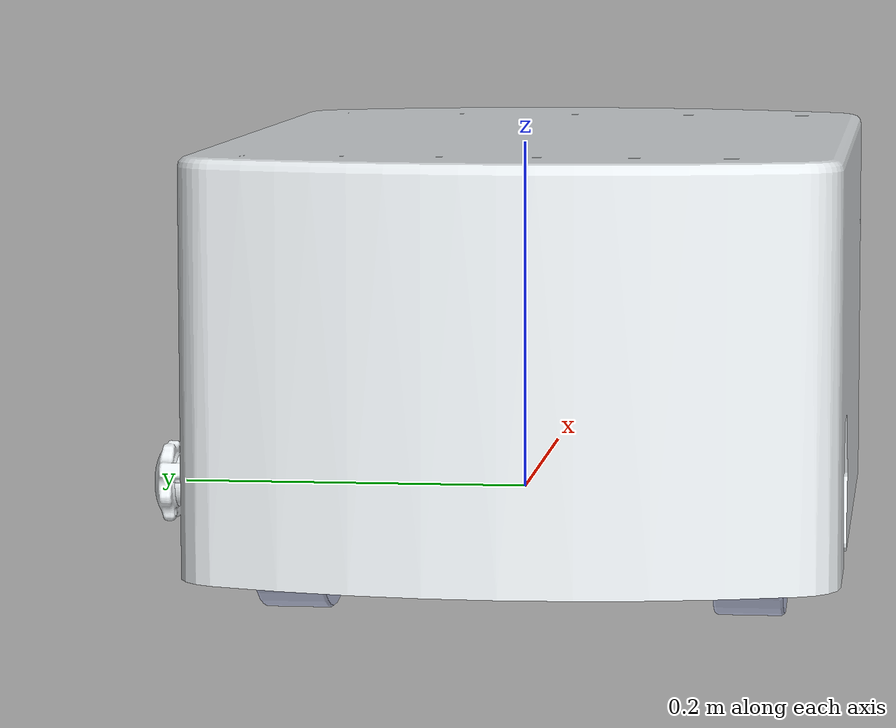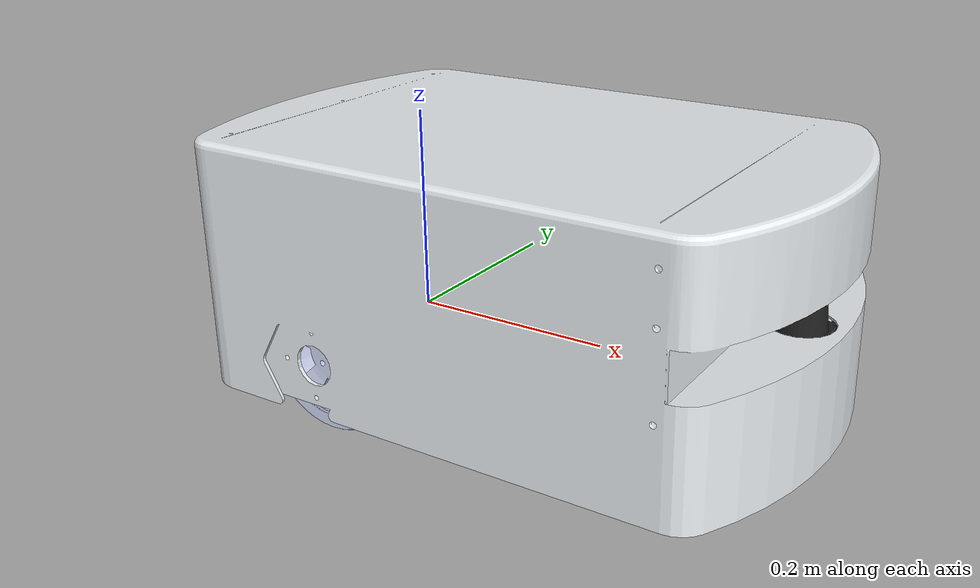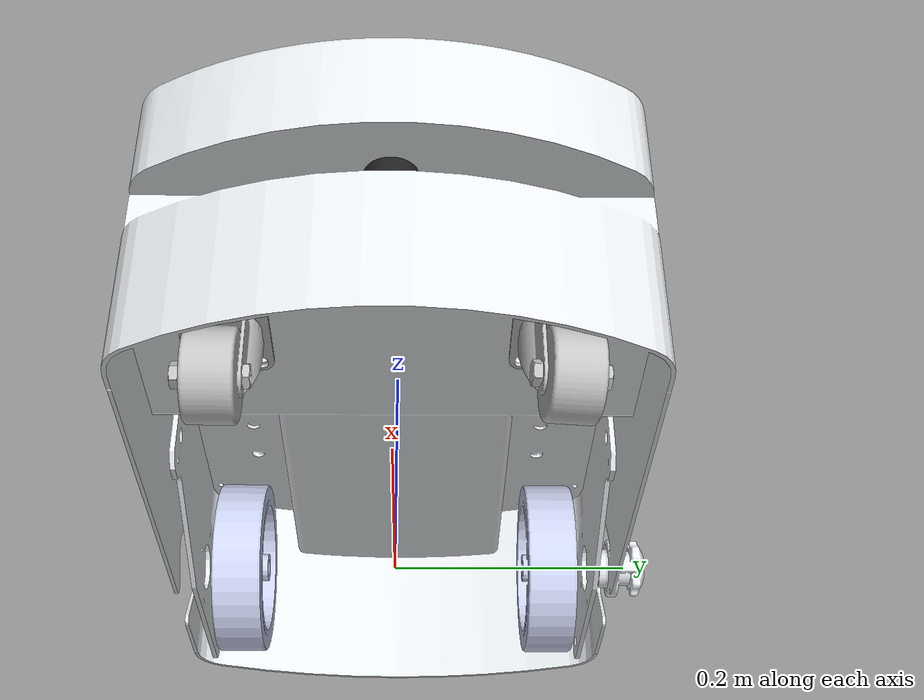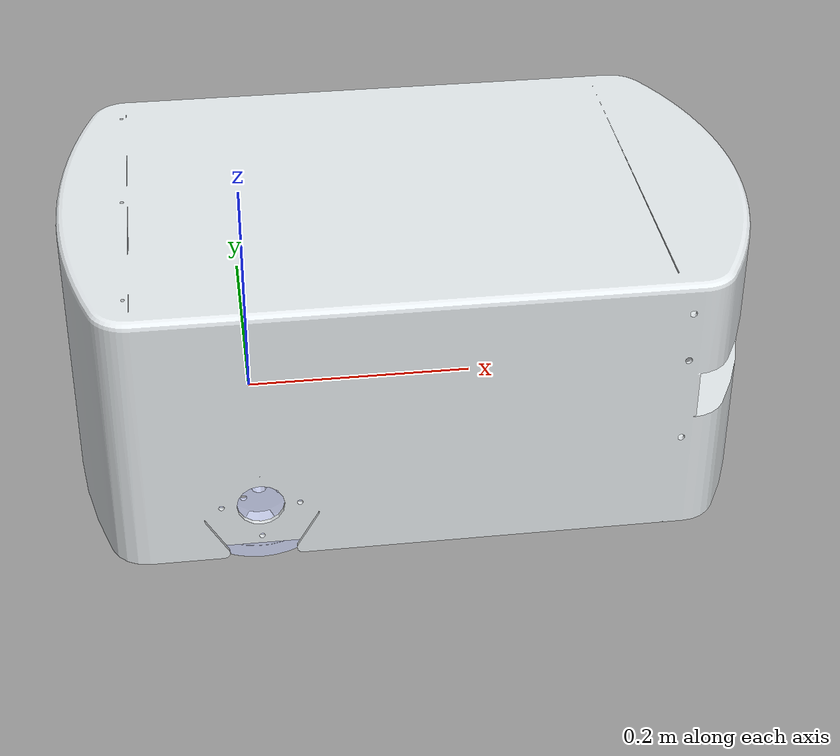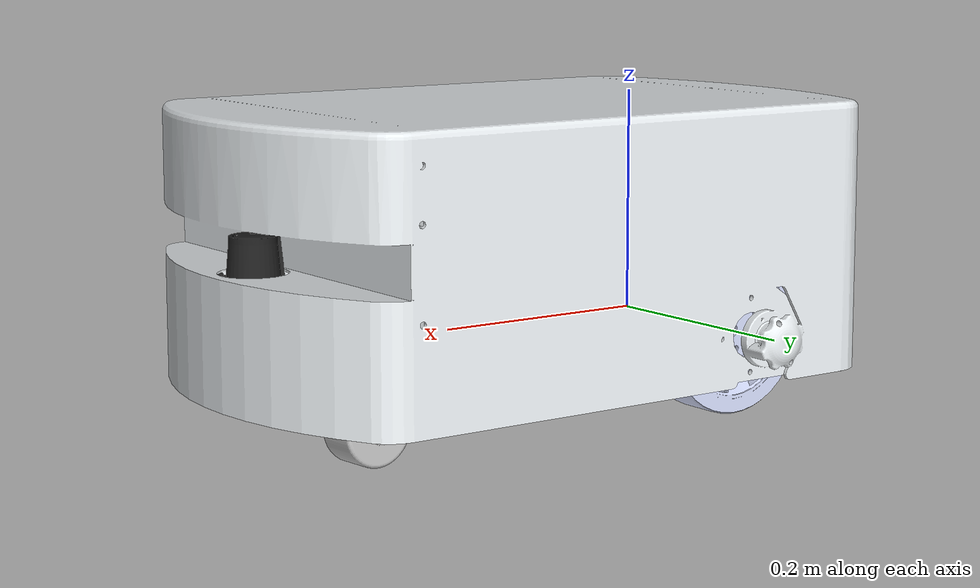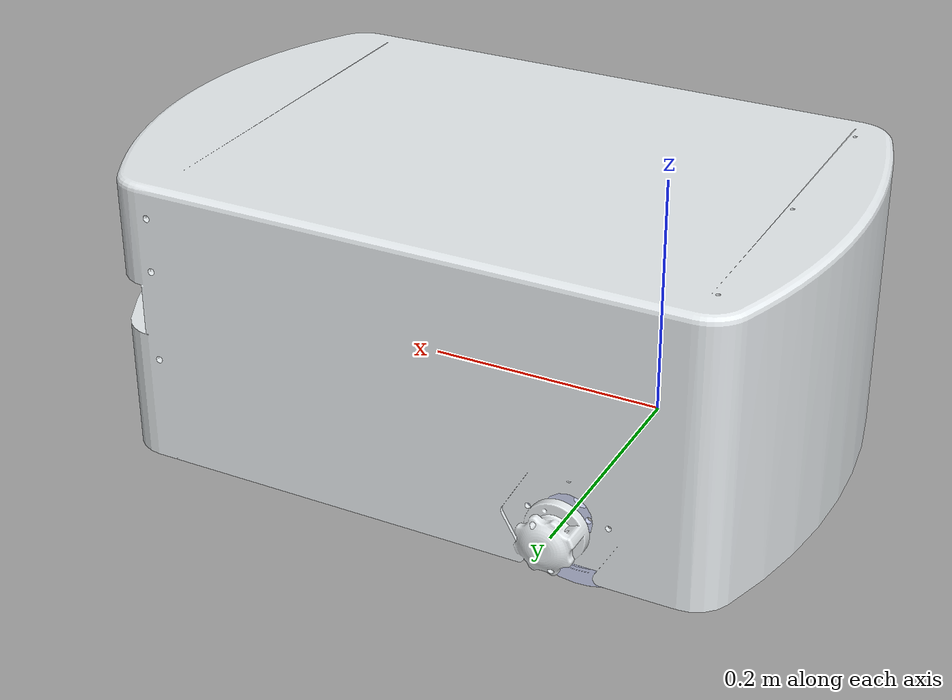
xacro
<?xml version="1.0" ?>
<robot name="turtlebot3_myAGV" xmlns:xacro="http://ros.org/wiki/xacro">
  <xacro:include filename="$(find turtlebot3_description)/urdf/common_properties.xacro"/>
  <xacro:include filename="$(find turtlebot3_description)/urdf/turtlebot3_myAGV.gazebo.xacro"/>

  <link name="base_footprint"/>

  <joint name="base_joint" type="fixed">
    <parent link="base_footprint"/>
    <child link="base_link"/>
    <origin xyz="0 0.0 0.0" rpy="0 0 0"/>
  </joint>
<link
    name="base_link">
    <inertial>
      <origin
        xyz="0 0.000827450108183816 0.0940655414330139"
        rpy="0 0 0" />
      <mass
        value="8.2573504e-01" />
      <inertia
        ixx="2.2124416e-03" ixy="-1.2294101e-05" ixz="3.4938785e-05"
               iyy="2.1193702e-03" iyz="-5.0120904e-06"
               izz="2.0064271e-03" />
    </inertial>
    <visual>
      <origin
        xyz="0 0 0"
        rpy="0 0 0" />
      <geometry>
        <mesh
          filename="package://turtlebot3_agv/meshes/base_link.STL" />
      </geometry>
      <material
        name="">
        <color
          rgba="0.898039215686275 0.917647058823529 0.929411764705882 1" />
      </material>
    </visual>
    <collision>
      <origin
        xyz="0 0 0"
        rpy="0 0 0" />
      <geometry>
        <mesh
          filename="package://turtlebot3_agv/meshes/base_link.STL" />
      </geometry>
    </collision>
  </link>
  <link
    name="wheel_right_link">
    <inertial>
      <origin
        xyz="1.42869155533853E-07 5.01976036182839E-08 0.0126479412682328"
        rpy="0 0 0" />
      <mass
        value="0.314315912620171" />
      <inertia
        ixx="1.1175580e-05" ixy="-4.2369783e-11" ixz="-5.9381719e-09"
               iyy="1.1192413e-05" iyz="-1.4400107e-11"
               izz="2.0712558e-05" />
    </inertial>
    <visual>
      <origin
        xyz="0 0 0"
        rpy="0 0 0" />
      <geometry>
        <mesh
          filename="package://turtlebot3_agv/meshes/Wheel_right_link.STL" />
      </geometry>
      <material
        name="">
        <color
          rgba="0.796078431372549 0.823529411764706 0.937254901960784 1" />
      </material>
    </visual>
    <collision>
      <origin
        xyz="0 0 0"
        rpy="0 0 0" />
      <geometry>
        <mesh
          filename="package://turtlebot3_agv/meshes/Wheel_right_link.STL" />
      </geometry>
    </collision>
  </link>
  <joint
    name="wheel_right_joint"
    type="continuous">
    <origin
      xyz="0 -0.144850779034482 0"
      rpy="-1.5707963267949 0 0" />
    <parent
      link="base_link" />
    <child
      link="wheel_right_link" />
    <axis
      xyz="0 0 1" />
  </joint>
  <link
    name="wheel_left_link">
    <inertial>
      <origin
        xyz="1.48512857914285E-07 -2.95859081029821E-08 -0.0126479412682294"
        rpy="0 0 0" />
      <mass
        value="0.314315912620173" />
      <inertia
        ixx="1.1175580e-05" ixy="-4.2369783e-11" ixz="-5.9381719e-09"
               iyy="1.1192413e-05" iyz="-1.4400107e-11"
               izz="2.0712558e-05" />
    </inertial>
    <visual>
      <origin
        xyz="0 0 0"
        rpy="0 0 0" />
      <geometry>
        <mesh
          filename="package://turtlebot3_agv/meshes/Wheel_left_link.STL" />
      </geometry>
      <material
        name="">
        <color
          rgba="0.796078431372549 0.823529411764706 0.937254901960784 1" />
      </material>
    </visual>
    <collision>
      <origin
        xyz="0 0 0"
        rpy="0 0 0" />
      <geometry>
        <mesh
          filename="package://turtlebot3_agv/meshes/Wheel_left_link.STL" />
      </geometry>
    </collision>
  </link>
  <joint
    name="wheel_left_joint"
    type="continuous">
    <origin
      xyz="0 0.144850779034479 0"
      rpy="-1.5707963267949 0 0" />
    <parent
      link="base_link" />
    <child
      link="wheel_left_link" />
    <axis
      xyz="0 0 1" />
  </joint>
  <link
    name="caster_back_left_link">
    <inertial>
      <origin
        xyz="0.0238758097582441 0.046525963467403 0.00243393414299073"
         />
      <mass
        value="0.005" />
      <inertia
        ixx="0.001" ixy="0.0" ixz="0.0"
               iyy="0.001" iyz="0.0"
               izz="0.001" />
    </inertial>
    <visual>
      <origin
        xyz="0 0 0"
        rpy="0 0 0" />
      <geometry>
        <mesh
          filename="package://turtlebot3_agv/meshes/Wheel_small_1_link.STL" />
      </geometry>
      <material
        name="">
        <color
          rgba="0.752941176470588 0.752941176470588 0.752941176470588 1" />
      </material>
    </visual>
    <collision>
      <origin
        xyz="0 0 0"
        rpy="0 0 0" />
      <geometry>
        <mesh
          filename="package://turtlebot3_agv/meshes/Wheel_small_1_link.STL" />
      </geometry>
    </collision>
  </link>
  <joint
    name="caster_back_left_joint"
    type="fixed">
    <origin
      xyz="0.324561380831399 0.1153 0.022292142743223"
      rpy="-1.5707963267949 0 0" />
    <parent
      link="base_link" />
    <child
      link="caster_back_left_link" />
    <axis
      xyz="0 0 0" />
  </joint>
  <link
    name="caster_back_right_link">
    <inertial>
      <origin
        xyz="0.0239966492860011 0.0465259605815261 0.000372265052759346"
        rpy="0 0 0" />
      <mass
        value="0.005" />
      <inertia
        ixx="0.001" ixy="0.0" ixz="0.0"
               iyy="0.001" iyz="0.0"
               izz="0.001" />
    </inertial>
    <visual>
      <origin
        xyz="0 0 0"
        rpy="0 0 0" />
      <geometry>
        <mesh
          filename="package://turtlebot3_agv/meshes/Wheel_small_2_link.STL" />
      </geometry>
      <material
        name="">
        <color
          rgba="0.752941176470588 0.752941176470588 0.752941176470588 1" />
      </material>
    </visual>
    <collision>
      <origin
        xyz="0 0 0"
        rpy="0 0 0" />
      <geometry>
        <mesh
          filename="package://turtlebot3_agv/meshes/Wheel_small_2_link.STL" />
      </geometry>
    </collision>
  </link>
  <joint
    name="caster_back_right_joint"
    type="fixed">
    <origin
      xyz="0.322061380831399 -0.1153 0.0222921427432125"
      rpy="-1.5707963267949 0 0" />
    <parent
      link="base_link" />
    <child
      link="caster_back_right_link" />
    <axis
      xyz="0 0 0" />
  </joint>
  <joint name="imu_joint" type="fixed">
    <parent link="base_link"/>
    <child link="imu_link"/>
    <origin xyz="-0.032 0 0.068" rpy="0 0 0"/>
  </joint>

  <link name="imu_link"/>

   <joint name="scan_joint" type="fixed">
    <parent link="base_link"/>
    <child link="base_scan"/>
    <origin xyz="0.392242528010143 -0.000156533163617606 0.0793945220729009" rpy="0 0 0"/>
  </joint>

  <link name="base_scan">
    <visual>
      <origin xyz="0 0 0" rpy="0 0 0"/>
      <geometry>
        <mesh filename="package://turtlebot3_agv/meshes/Base_scan.STL"/>
      </geometry>
      <material name="dark"/>
    </visual>

    <collision>
      <origin xyz="0.015 0 -0.0065" rpy="0 0 0"/>
      <geometry>
        <cylinder length="0.0315" radius="0.055"/>
      </geometry>
    </collision>

    <inertial>
      <mass value="0.114" />
      <origin xyz="0 0 0" />
      <inertia ixx="0.001" ixy="0.0" ixz="0.0"
               iyy="0.001" iyz="0.0"
               izz="0.001" />
    </inertial>
  </link>
</robot>

<!--
	package://turtlebot3_agv/meshes/Base_scan.STL
     xyz="0.311063005668211 0.013163320764055 -0.00541146067445972"
!-->
